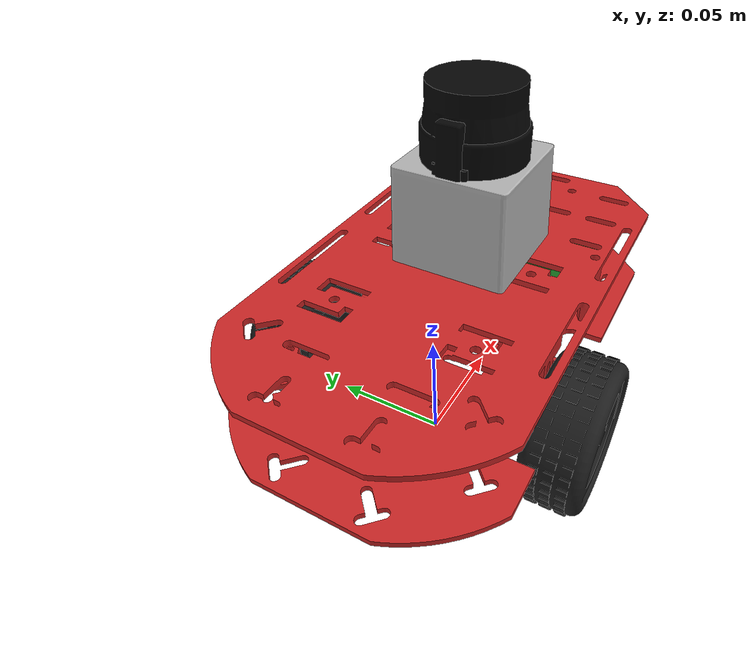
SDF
<?xml version='1.0'?>
<sdf version='1.7'>
  <model name='DDR'>
    <link name='base_footprint'>
      <inertial>
        <pose>0.0365 0 0.039673 0 -0 0</pose>
        <mass>0.26</mass>
        <inertia>
          <ixx>0.000321609</ixx>
          <ixy>0</ixy>
          <ixz>-6.42075e-05</ixz>
          <iyy>0.00113205</iyy>
          <iyz>0</iyz>
          <izz>0.0010641</izz>
        </inertia>
      </inertial>
      <sensor name='camera1' type='camera'>
        <update_rate>30</update_rate>
        <camera name='head'>
          <horizontal_fov>1.39626</horizontal_fov>
          <image>
            <width>800</width>
            <height>800</height>
            <format>R8G8B8</format>
          </image>
          <clip>
            <near>0.02</near>
            <far>300</far>
          </clip>
        </camera>
        <plugin name='camera_controller' filename='libgazebo_ros_camera.so'>
          <alwaysOn>1</alwaysOn>
          <updateRate>0.0</updateRate>
          <cameraName>my_robot/camera1</cameraName>
          <imageTopicName>image_raw</imageTopicName>
          <cameraInfoTopicName>camera_info</cameraInfoTopicName>
          <frameName>camera_link</frameName>
          <hackBaseline>0.07</hackBaseline>
          <distortionK1>0.0</distortionK1>
          <distortionK2>0.0</distortionK2>
          <distortionK3>0.0</distortionK3>
          <distortionT1>0.0</distortionT1>
          <distortionT2>0.0</distortionT2>
          <robotNamespace>/</robotNamespace>
        </plugin>
        <pose>0.095 0 0.06 0 -0 0</pose>
      </sensor>
      <sensor name='camera1' type='camera'>
        <update_rate>30</update_rate>
        <camera name='head'>
          <horizontal_fov>1.39626</horizontal_fov>
          <image>
            <width>800</width>
            <height>800</height>
            <format>R8G8B8</format>
          </image>
          <clip>
            <near>0.02</near>
            <far>300</far>
          </clip>
        </camera>
        <plugin name='camera_controller' filename='libgazebo_ros_camera.so'>
          <alwaysOn>1</alwaysOn>
          <updateRate>0.0</updateRate>
          <cameraName>my_robot/camera1</cameraName>
          <imageTopicName>image_raw</imageTopicName>
          <cameraInfoTopicName>camera_info</cameraInfoTopicName>
          <frameName>camera_link</frameName>
          <hackBaseline>0.07</hackBaseline>
          <distortionK1>0.0</distortionK1>
          <distortionK2>0.0</distortionK2>
          <distortionK3>0.0</distortionK3>
          <distortionT1>0.0</distortionT1>
          <distortionT2>0.0</distortionT2>
          <robotNamespace>/</robotNamespace>
        </plugin>
        <pose>0.095 0 0.06 0 -0 0</pose>
      </sensor>
      <sensor name='head_hokuyo_sensor' type='ray'>
        <visualize>0</visualize>
        <update_rate>40</update_rate>
        <ray>
          <scan>
            <horizontal>
              <samples>720</samples>
              <resolution>1</resolution>
              <min_angle>-1.5708</min_angle>
              <max_angle>1.5708</max_angle>
            </horizontal>
            <vertical>
              <samples>1</samples>
              <min_angle>0</min_angle>
              <max_angle>0</max_angle>
            </vertical>
          </scan>
          <range>
            <min>0.1</min>
            <max>30</max>
            <resolution>0.01</resolution>
          </range>
          <noise>
            <type>gaussian</type>
            <mean>0</mean>
            <stddev>0.01</stddev>
          </noise>
        </ray>
        <plugin name='gazebo_ros_head_hokuyo_controller' filename='libgazebo_ros_laser.so'>
          <topicName>/my_robot/laser/scan</topicName>
          <frameName>hokuyo_link</frameName>
          <robotNamespace>/</robotNamespace>
        </plugin>
        <pose>0.035 0 0.1135 0 -0 0</pose>
      </sensor>
      <sensor name='head_hokuyo_sensor' type='ray'>
        <visualize>0</visualize>
        <update_rate>40</update_rate>
        <ray>
          <scan>
            <horizontal>
              <samples>720</samples>
              <resolution>1</resolution>
              <min_angle>-1.5708</min_angle>
              <max_angle>1.5708</max_angle>
            </horizontal>
            <vertical>
              <samples>1</samples>
              <min_angle>0</min_angle>
              <max_angle>0</max_angle>
            </vertical>
          </scan>
          <range>
            <min>0.1</min>
            <max>30</max>
            <resolution>0.01</resolution>
          </range>
          <noise>
            <type>gaussian</type>
            <mean>0</mean>
            <stddev>0.01</stddev>
          </noise>
        </ray>
        <plugin name='gazebo_ros_head_hokuyo_controller' filename='libgazebo_ros_laser.so'>
          <topicName>/my_robot/laser/scan</topicName>
          <frameName>hokuyo_link</frameName>
          <robotNamespace>/</robotNamespace>
        </plugin>
        <pose>0.035 0 0.1135 0 -0 0</pose>
      </sensor>
      <self_collide>0</self_collide>
      <enable_wind>0</enable_wind>
      <kinematic>0</kinematic>
      <pose>0 0 0 0 -0 0</pose>
      <visual name='base_footprint_fixed_joint_lump__chassis_visual'>
        <pose>0 0 0.032 0 -0 0</pose>
        <geometry>
          <mesh>
            <scale>1 1 1</scale>
            <uri>/home/chh3213/chh_ros/safeRL_ws/src/my_ROS_mobile_robot/my_robot_description/meshes/chassis.dae</uri>
          </mesh>
        </geometry>
        <material>
          <script>
            <name>Gazebo/Red</name>
            <uri>file://media/materials/scripts/gazebo.material</uri>
          </script>
          <shader type='pixel'/>
        </material>
        <transparency>0</transparency>
        <cast_shadows>1</cast_shadows>
      </visual>
      <visual name='base_footprint_fixed_joint_lump__camera_link_visual_1'>
        <pose>0.095 0 0.06 0 -0 0</pose>
        <geometry>
          <box>
            <size>0.04 0.08 0.03</size>
          </box>
        </geometry>
        <material>
          <script>
            <name>Gazebo/Green</name>
            <uri>file://media/materials/scripts/gazebo.material</uri>
          </script>
          <shader type='pixel'/>
        </material>
        <transparency>0</transparency>
        <cast_shadows>1</cast_shadows>
      </visual>
      <visual name='base_footprint_fixed_joint_lump__caster_wheel_visual_2'>
        <pose>0.091 0 0.042 0 -0 0</pose>
        <geometry>
          <mesh>
            <scale>1 1 1</scale>
            <uri>/home/chh3213/chh_ros/safeRL_ws/src/my_ROS_mobile_robot/my_robot_description/meshes/caster_wheel.dae</uri>
          </mesh>
        </geometry>
        <material>
          <script>
            <name>Gazebo/Chrome</name>
            <uri>file://media/materials/scripts/gazebo.material</uri>
          </script>
          <shader type='pixel'/>
        </material>
        <transparency>0</transparency>
        <cast_shadows>1</cast_shadows>
      </visual>
      <visual name='base_footprint_fixed_joint_lump__hokuyo_link_visual_3'>
        <pose>0.035 0 0.1135 0 -0 0</pose>
        <geometry>
          <mesh>
            <scale>1 1 1</scale>
            <uri>/home/chh3213/chh_ros/safeRL_ws/src/my_ROS_mobile_robot/my_robot_description/meshes/hokuyo.dae</uri>
          </mesh>
        </geometry>
        <material>
          <shader type='pixel'/>
        </material>
        <transparency>0</transparency>
        <cast_shadows>1</cast_shadows>
      </visual>
      <collision name='base_footprint_fixed_joint_lump__chassis_collision'>
        <laser_retro>0</laser_retro>
        <max_contacts>10</max_contacts>
        <pose>0 0 0.032 0 -0 0</pose>
        <geometry>
          <mesh>
            <uri>/home/chh3213/chh_ros/safeRL_ws/src/my_ROS_mobile_robot/my_robot_description/meshes/chassis.dae</uri>
            <scale>1 1 1</scale>
          </mesh>
        </geometry>
        <surface>
          <friction>
            <ode>
              <mu>0.3</mu>
              <mu2>0.3</mu2>
              <fdir1>0 0 0</fdir1>
              <slip1>0</slip1>
              <slip2>0</slip2>
            </ode>
            <torsional>
              <coefficient>1</coefficient>
              <patch_radius>0</patch_radius>
              <surface_radius>0</surface_radius>
              <use_patch_radius>1</use_patch_radius>
              <ode>
                <slip>0</slip>
              </ode>
            </torsional>
          </friction>
          <bounce>
            <restitution_coefficient>0</restitution_coefficient>
            <threshold>1e+06</threshold>
          </bounce>
          <contact>
            <collide_without_contact>0</collide_without_contact>
            <collide_without_contact_bitmask>1</collide_without_contact_bitmask>
            <collide_bitmask>1</collide_bitmask>
            <ode>
              <soft_cfm>0</soft_cfm>
              <soft_erp>0.2</soft_erp>
              <kp>1e+13</kp>
              <kd>1</kd>
              <max_vel>0.01</max_vel>
              <min_depth>0</min_depth>
            </ode>
            <bullet>
              <split_impulse>1</split_impulse>
              <split_impulse_penetration_threshold>-0.01</split_impulse_penetration_threshold>
              <soft_cfm>0</soft_cfm>
              <soft_erp>0.2</soft_erp>
              <kp>1e+13</kp>
              <kd>1</kd>
            </bullet>
          </contact>
        </surface>
      </collision>
      <collision name='base_footprint_fixed_joint_lump__camera_link_collision_1'>
        <laser_retro>0</laser_retro>
        <max_contacts>10</max_contacts>
        <pose>0.095 0 0.06 0 -0 0</pose>
        <geometry>
          <box>
            <size>0.04 0.08 0.03</size>
          </box>
        </geometry>
        <surface>
          <friction>
            <ode>
              <mu>0.2</mu>
              <mu2>0.2</mu2>
              <fdir1>0 0 0</fdir1>
              <slip1>0</slip1>
              <slip2>0</slip2>
            </ode>
            <torsional>
              <coefficient>1</coefficient>
              <patch_radius>0</patch_radius>
              <surface_radius>0</surface_radius>
              <use_patch_radius>1</use_patch_radius>
              <ode>
                <slip>0</slip>
              </ode>
            </torsional>
          </friction>
          <bounce>
            <restitution_coefficient>0</restitution_coefficient>
            <threshold>1e+06</threshold>
          </bounce>
          <contact>
            <collide_without_contact>0</collide_without_contact>
            <collide_without_contact_bitmask>1</collide_without_contact_bitmask>
            <collide_bitmask>1</collide_bitmask>
            <ode>
              <soft_cfm>0</soft_cfm>
              <soft_erp>0.2</soft_erp>
              <kp>1e+13</kp>
              <kd>1</kd>
              <max_vel>0.01</max_vel>
              <min_depth>0</min_depth>
            </ode>
            <bullet>
              <split_impulse>1</split_impulse>
              <split_impulse_penetration_threshold>-0.01</split_impulse_penetration_threshold>
              <soft_cfm>0</soft_cfm>
              <soft_erp>0.2</soft_erp>
              <kp>1e+13</kp>
              <kd>1</kd>
            </bullet>
          </contact>
        </surface>
      </collision>
      <collision name='base_footprint_fixed_joint_lump__caster_wheel_collision_2'>
        <laser_retro>0</laser_retro>
        <max_contacts>10</max_contacts>
        <pose>0.091 0 0.042 0 -0 0</pose>
        <geometry>
          <mesh>
            <uri>/home/chh3213/chh_ros/safeRL_ws/src/my_ROS_mobile_robot/my_robot_description/meshes/caster_wheel.dae</uri>
            <scale>1 1 1</scale>
          </mesh>
        </geometry>
        <surface>
          <friction>
            <ode>
              <mu>0</mu>
              <mu2>0</mu2>
              <fdir1>0 0 0</fdir1>
              <slip1>0</slip1>
              <slip2>0</slip2>
            </ode>
            <torsional>
              <coefficient>1</coefficient>
              <patch_radius>0</patch_radius>
              <surface_radius>0</surface_radius>
              <use_patch_radius>1</use_patch_radius>
              <ode>
                <slip>0</slip>
              </ode>
            </torsional>
          </friction>
          <bounce>
            <restitution_coefficient>0</restitution_coefficient>
            <threshold>1e+06</threshold>
          </bounce>
          <contact>
            <collide_without_contact>0</collide_without_contact>
            <collide_without_contact_bitmask>1</collide_without_contact_bitmask>
            <collide_bitmask>1</collide_bitmask>
            <ode>
              <soft_cfm>0</soft_cfm>
              <soft_erp>0.2</soft_erp>
              <kp>1e+06</kp>
              <kd>100</kd>
              <max_vel>1</max_vel>
              <min_depth>0.001</min_depth>
            </ode>
            <bullet>
              <split_impulse>1</split_impulse>
              <split_impulse_penetration_threshold>-0.01</split_impulse_penetration_threshold>
              <soft_cfm>0</soft_cfm>
              <soft_erp>0.2</soft_erp>
              <kp>1e+06</kp>
              <kd>100</kd>
            </bullet>
          </contact>
        </surface>
      </collision>
      <collision name='base_footprint_fixed_joint_lump__hokuyo_link_collision_3'>
        <laser_retro>0</laser_retro>
        <max_contacts>10</max_contacts>
        <pose>0.035 0 0.1135 0 -0 0</pose>
        <geometry>
          <box>
            <size>0.05 0.05 0.07</size>
          </box>
        </geometry>
        <surface>
          <friction>
            <ode>
              <mu>1</mu>
              <mu2>1</mu2>
              <fdir1>0 0 0</fdir1>
              <slip1>0</slip1>
              <slip2>0</slip2>
            </ode>
            <torsional>
              <coefficient>1</coefficient>
              <patch_radius>0</patch_radius>
              <surface_radius>0</surface_radius>
              <use_patch_radius>1</use_patch_radius>
              <ode>
                <slip>0</slip>
              </ode>
            </torsional>
          </friction>
          <bounce>
            <restitution_coefficient>0</restitution_coefficient>
            <threshold>1e+06</threshold>
          </bounce>
          <contact>
            <collide_without_contact>0</collide_without_contact>
            <collide_without_contact_bitmask>1</collide_without_contact_bitmask>
            <collide_bitmask>1</collide_bitmask>
            <ode>
              <soft_cfm>0</soft_cfm>
              <soft_erp>0.2</soft_erp>
              <kp>1e+13</kp>
              <kd>1</kd>
              <max_vel>0.01</max_vel>
              <min_depth>0</min_depth>
            </ode>
            <bullet>
              <split_impulse>1</split_impulse>
              <split_impulse_penetration_threshold>-0.01</split_impulse_penetration_threshold>
              <soft_cfm>0</soft_cfm>
              <soft_erp>0.2</soft_erp>
              <kp>1e+13</kp>
              <kd>1</kd>
            </bullet>
          </contact>
        </surface>
      </collision>
    </link>
    <link name='left_wheel'>
      <pose>0 0.063 0.032 0 -0 0</pose>
      <inertial>
        <pose>0 0 0 1.5708 -0 0</pose>
        <mass>0.05</mass>
        <inertia>
          <ixx>1.56167e-05</ixx>
          <ixy>0</ixy>
          <ixz>0</ixz>
          <iyy>1.56167e-05</iyy>
          <iyz>0</iyz>
          <izz>2.56e-05</izz>
        </inertia>
      </inertial>
      <self_collide>0</self_collide>
      <enable_wind>0</enable_wind>
      <kinematic>0</kinematic>
      <visual name='left_wheel_visual'>
        <pose>0 0 0 1.5708 -0 0</pose>
        <geometry>
          <mesh>
            <scale>1 1 1</scale>
            <uri>/home/chh3213/chh_ros/safeRL_ws/src/my_ROS_mobile_robot/my_robot_description/meshes/left_wheel.dae</uri>
          </mesh>
        </geometry>
        <material>
          <script>
            <name>Gazebo/FlatBlack</name>
            <uri>file://media/materials/scripts/gazebo.material</uri>
          </script>
          <shader type='pixel'/>
        </material>
        <transparency>0</transparency>
        <cast_shadows>1</cast_shadows>
      </visual>
      <collision name='left_wheel_collision'>
        <laser_retro>0</laser_retro>
        <max_contacts>10</max_contacts>
        <pose>0 0 0 1.5708 -0 0</pose>
        <geometry>
          <cylinder>
            <radius>0.032</radius>
            <length>0.026</length>
          </cylinder>
        </geometry>
        <surface>
          <friction>
            <ode>
              <mu>1</mu>
              <mu2>1</mu2>
              <fdir1>0 0 0</fdir1>
              <slip1>0</slip1>
              <slip2>0</slip2>
            </ode>
            <torsional>
              <coefficient>1</coefficient>
              <patch_radius>0</patch_radius>
              <surface_radius>0</surface_radius>
              <use_patch_radius>1</use_patch_radius>
              <ode>
                <slip>0</slip>
              </ode>
            </torsional>
          </friction>
          <bounce>
            <restitution_coefficient>0</restitution_coefficient>
            <threshold>1e+06</threshold>
          </bounce>
          <contact>
            <collide_without_contact>0</collide_without_contact>
            <collide_without_contact_bitmask>1</collide_without_contact_bitmask>
            <collide_bitmask>1</collide_bitmask>
            <ode>
              <soft_cfm>0</soft_cfm>
              <soft_erp>0.2</soft_erp>
              <kp>1e+07</kp>
              <kd>100</kd>
              <max_vel>1</max_vel>
              <min_depth>0.001</min_depth>
            </ode>
            <bullet>
              <split_impulse>1</split_impulse>
              <split_impulse_penetration_threshold>-0.01</split_impulse_penetration_threshold>
              <soft_cfm>0</soft_cfm>
              <soft_erp>0.2</soft_erp>
              <kp>1e+07</kp>
              <kd>100</kd>
            </bullet>
          </contact>
        </surface>
      </collision>
    </link>
    <link name='right_wheel'>
      <pose>0 -0.063 0.032 0 -0 0</pose>
      <inertial>
        <pose>0 0 0 -1.5708 0 0</pose>
        <mass>0.05</mass>
        <inertia>
          <ixx>1.56167e-05</ixx>
          <ixy>0</ixy>
          <ixz>0</ixz>
          <iyy>1.56167e-05</iyy>
          <iyz>0</iyz>
          <izz>2.56e-05</izz>
        </inertia>
      </inertial>
      <self_collide>0</self_collide>
      <enable_wind>0</enable_wind>
      <kinematic>0</kinematic>
      <visual name='right_wheel_visual'>
        <pose>0 0 0 -1.5708 0 0</pose>
        <geometry>
          <mesh>
            <scale>1 1 1</scale>
            <uri>/home/chh3213/chh_ros/safeRL_ws/src/my_ROS_mobile_robot/my_robot_description/meshes/right_wheel.dae</uri>
          </mesh>
        </geometry>
        <material>
          <script>
            <name>Gazebo/FlatBlack</name>
            <uri>file://media/materials/scripts/gazebo.material</uri>
          </script>
          <shader type='pixel'/>
        </material>
        <transparency>0</transparency>
        <cast_shadows>1</cast_shadows>
      </visual>
      <collision name='right_wheel_collision'>
        <laser_retro>0</laser_retro>
        <max_contacts>10</max_contacts>
        <pose>0 0 0 -1.5708 0 0</pose>
        <geometry>
          <cylinder>
            <radius>0.032</radius>
            <length>0.026</length>
          </cylinder>
        </geometry>
        <surface>
          <friction>
            <ode>
              <mu>1</mu>
              <mu2>1</mu2>
              <fdir1>0 0 0</fdir1>
              <slip1>0</slip1>
              <slip2>0</slip2>
            </ode>
            <torsional>
              <coefficient>1</coefficient>
              <patch_radius>0</patch_radius>
              <surface_radius>0</surface_radius>
              <use_patch_radius>1</use_patch_radius>
              <ode>
                <slip>0</slip>
              </ode>
            </torsional>
          </friction>
          <bounce>
            <restitution_coefficient>0</restitution_coefficient>
            <threshold>1e+06</threshold>
          </bounce>
          <contact>
            <collide_without_contact>0</collide_without_contact>
            <collide_without_contact_bitmask>1</collide_without_contact_bitmask>
            <collide_bitmask>1</collide_bitmask>
            <ode>
              <soft_cfm>0</soft_cfm>
              <soft_erp>0.2</soft_erp>
              <kp>1e+07</kp>
              <kd>100</kd>
              <max_vel>1</max_vel>
              <min_depth>0.001</min_depth>
            </ode>
            <bullet>
              <split_impulse>1</split_impulse>
              <split_impulse_penetration_threshold>-0.01</split_impulse_penetration_threshold>
              <soft_cfm>0</soft_cfm>
              <soft_erp>0.2</soft_erp>
              <kp>1e+07</kp>
              <kd>100</kd>
            </bullet>
          </contact>
        </surface>
      </collision>
    </link>
    <joint name='left_wheel_hinge' type='revolute'>
      <parent>base_footprint</parent>
      <child>left_wheel</child>
      <pose>0 0 0 0 -0 0</pose>
      <axis>
        <xyz>0 1 0</xyz>
        <limit>
          <lower>-1e+16</lower>
          <upper>1e+16</upper>
          <effort>0</effort>
          <velocity>0</velocity>
        </limit>
        <dynamics>
          <spring_reference>0</spring_reference>
          <spring_stiffness>0</spring_stiffness>
          <damping>0</damping>
          <friction>0</friction>
        </dynamics>
      </axis>
      <physics>
        <ode>
          <limit>
            <cfm>0</cfm>
            <erp>0.2</erp>
          </limit>
          <suspension>
            <cfm>0</cfm>
            <erp>0.2</erp>
          </suspension>
        </ode>
      </physics>
    </joint>
    <joint name='right_wheel_hinge' type='revolute'>
      <parent>base_footprint</parent>
      <child>right_wheel</child>
      <pose>0 0 0 0 -0 0</pose>
      <axis>
        <xyz>0 1 0</xyz>
        <limit>
          <lower>-1e+16</lower>
          <upper>1e+16</upper>
          <effort>0</effort>
          <velocity>0</velocity>
        </limit>
        <dynamics>
          <spring_reference>0</spring_reference>
          <spring_stiffness>0</spring_stiffness>
          <damping>0</damping>
          <friction>0</friction>
        </dynamics>
      </axis>
      <physics>
        <ode>
          <limit>
            <cfm>0</cfm>
            <erp>0.2</erp>
          </limit>
          <suspension>
            <cfm>0</cfm>
            <erp>0.2</erp>
          </suspension>
        </ode>
      </physics>
    </joint>
    <static>0</static>
    <allow_auto_disable>1</allow_auto_disable>
    <plugin name='differential_drive_controller' filename='libgazebo_ros_diff_drive.so'>
      <robotNamespace>/</robotNamespace>
      <alwaysOn>1</alwaysOn>
      <updateRate>100</updateRate>
      <leftJoint>left_wheel_hinge</leftJoint>
      <rightJoint>right_wheel_hinge</rightJoint>
      <wheelSeparation>0.045</wheelSeparation>
      <wheelDiameter>0.064</wheelDiameter>
      <torque>20</torque>
      <commandTopic>my_robot/cmd_vel</commandTopic>
      <odometryTopic>my_robot/odom</odometryTopic>
      <odometryFrame>map</odometryFrame>
      <robotBaseFrame>base_footprint</robotBaseFrame>
      <legacyMode>0</legacyMode>
      <rosDebugLevel>Debug</rosDebugLevel>
      <publishWheelTF>1</publishWheelTF>
      <publishWheelJointState>1</publishWheelJointState>
      <wheelAcceleration>5</wheelAcceleration>
      <wheelTorque>20</wheelTorque>
      <publishTf>1</publishTf>
      <odometrySource>encoder</odometrySource>
    </plugin>
    <plugin name='gazebo_ros_control' filename='libgazebo_ros_control.so'>
      <robotNamespace>/my_robot</robotNamespace>
      <robotParam>/robot_description</robotParam>
      <robotSimType>gazebo_ros_control/DefaultRobotHWSim</robotSimType>
    </plugin>
    <plugin name='ground_truth' filename='libgazebo_ros_p3d.so'>
      <frameName>map</frameName>
      <topicName>my_robot/odom</topicName>
      <updateRate>30.0</updateRate>
      <gaussianNoise>0.0</gaussianNoise>
      <robotNamespace>/</robotNamespace>
      <bodyName>base_footprint</bodyName>
      <xyzOffset>0 0 0</xyzOffset>
      <rpyOffset>0 -0 0</rpyOffset>
    </plugin>
    <plugin name='imu_plugin' filename='libgazebo_ros_imu.so'>
      <alwaysOn>1</alwaysOn>
      <topicName>/my_robot/imu</topicName>
      <serviceName>imu_service</serviceName>
      <gaussianNoise>0.0</gaussianNoise>
      <updateRate>20.0</updateRate>
      <robotNamespace>/</robotNamespace>
      <bodyName>base_footprint</bodyName>
      <xyzOffset>0 0 0</xyzOffset>
      <rpyOffset>0 -0 0</rpyOffset>
    </plugin>
  </model>
</sdf>
